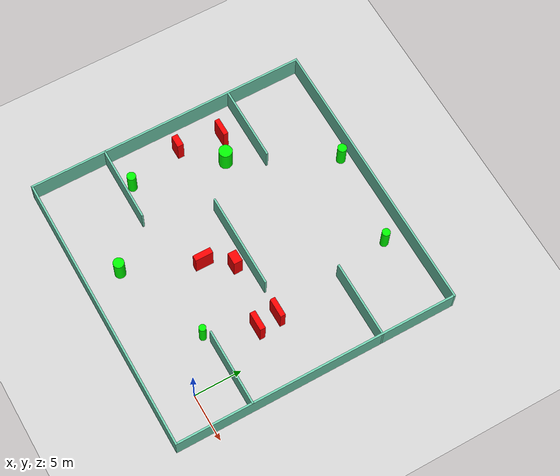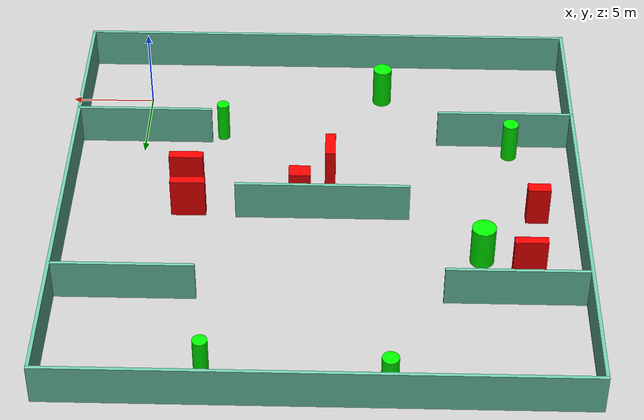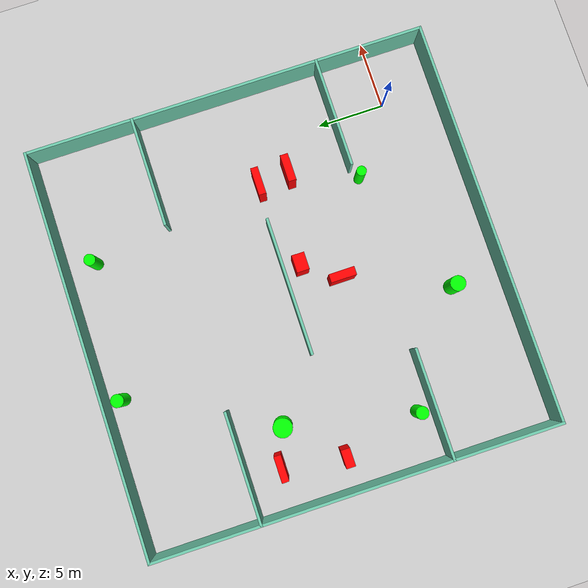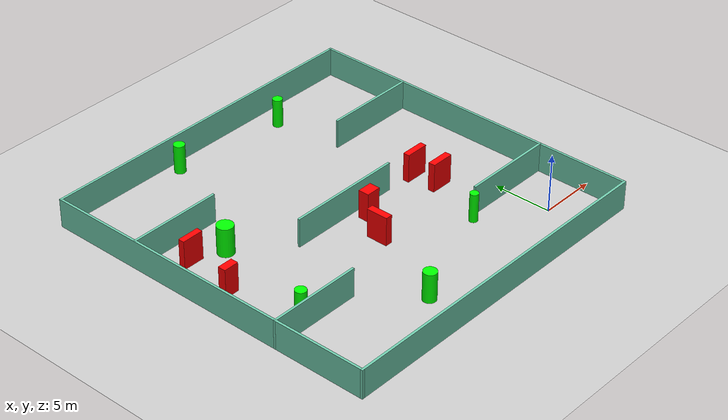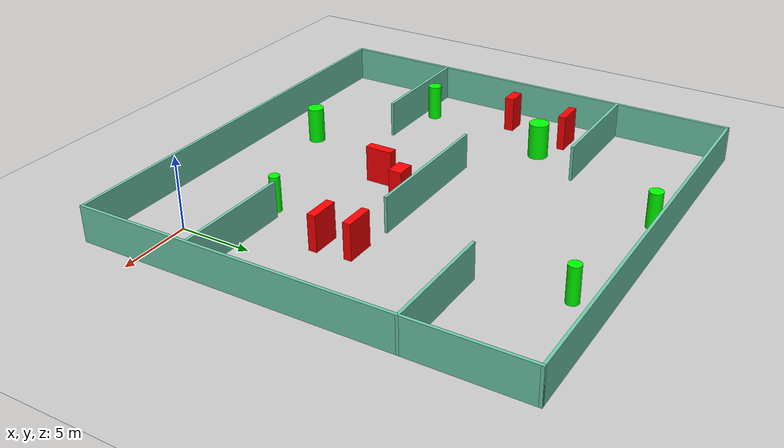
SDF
<sdf version="1.7">
 <world name="default">
  <light name="sun" type="directional">
   <pose>0 0 10 0 -0 0</pose>
   <diffuse>0.8 0.8 0.8 1</diffuse>
   <specular>0.2 0.2 0.2 1</specular>
   <attenuation>
    <range>1000</range>
    <constant>0.9</constant>
    <linear>0.01</linear>
    <quadratic>0.001</quadratic>
   </attenuation>
   <direction>-0.5 0.1 -0.9</direction>
   <spot><inner_angle>0</inner_angle><outer_angle>0</outer_angle><falloff>0</falloff></spot>
  </light>
  <model name="ground_plane">
   <static>1</static>
   <link name="link">
    <collision name="collision">
     <geometry><plane><normal>0 0 1</normal><size>100 100</size></plane></geometry>
     <surface>
      <contact><collide_bitmask>65535</collide_bitmask></contact>
      <friction><ode><mu>100</mu><mu2>50</mu2></ode></friction>
     </surface>
    </collision>
    <visual name="visual">
     <cast_shadows>0</cast_shadows>
     <geometry><plane><normal>0 0 1</normal><size>100 100</size></plane></geometry>
     <material>
      <script><uri>file://media/materials/scripts/gazebo.material</uri><name>Gazebo/Grey</name></script>
     </material>
    </visual>
   </link>
  </model>
  <gravity>0 0 -9.8</gravity>
  <magnetic_field>6e-06 2.3e-05 -4.2e-05</magnetic_field>
  <atmosphere type="adiabatic"/>
  <physics type="ode">
   <max_step_size>0.001</max_step_size>
   <real_time_factor>1</real_time_factor>
   <real_time_update_rate>1000</real_time_update_rate>
  </physics>
  <scene><ambient>0.4 0.4 0.4 1</ambient><background>0.7 0.7 0.7 1</background><shadows>1</shadows></scene>
  <spherical_coordinates>
   <surface_model>EARTH_WGS84</surface_model>
   <latitude_deg>0</latitude_deg>
   <longitude_deg>0</longitude_deg>
   <elevation>0</elevation>
   <heading_deg>0</heading_deg>
  </spherical_coordinates>
  <model name="my_base_walls">
   <link name="Wall_10">
    <collision name="Wall_10_Collision">
     <geometry><box><size>8.2 0.2 2.5</size></box></geometry>
     <pose>0 0 1.25 0 -0 0</pose>
    </collision>
    <visual name="Wall_10_Visual">
     <pose>0 0 1.25 0 -0 0</pose>
     <geometry><box><size>8.2 0.2 2.5</size></box></geometry>
     <material>
      <script><uri>file://media/materials/scripts/gazebo.material</uri><name>Gazebo/Grey</name></script>
      <ambient>0.435294 0.796078 0.67451 1</ambient>
     </material>
     <meta><layer>0</layer></meta>
    </visual>
    <pose>-11 -7 0 0 -0 0</pose>
   </link>
   <link name="Wall_12">
    <collision name="Wall_12_Collision">
     <geometry><box><size>8.2 0.2 2.5</size></box></geometry>
     <pose>0 0 1.25 0 -0 0</pose>
    </collision>
    <visual name="Wall_12_Visual">
     <pose>0 0 1.25 0 -0 0</pose>
     <geometry><box><size>8.2 0.2 2.5</size></box></geometry>
     <material>
      <script><uri>file://media/materials/scripts/gazebo.material</uri><name>Gazebo/Grey</name></script>
      <ambient>0.435294 0.796078 0.67451 1</ambient>
     </material>
     <meta><layer>0</layer></meta>
    </visual>
    <pose>-11 7 0 0 -0 0</pose>
   </link>
   <link name="Wall_14">
    <collision name="Wall_14_Collision">
     <geometry><box><size>8.2 0.2 2.5</size></box></geometry>
     <pose>0 0 1.25 0 -0 0</pose>
    </collision>
    <visual name="Wall_14_Visual">
     <pose>0 0 1.25 0 -0 0</pose>
     <geometry><box><size>8.2 0.2 2.5</size></box></geometry>
     <material>
      <script><uri>file://media/materials/scripts/gazebo.material</uri><name>Gazebo/Grey</name></script>
      <ambient>0.435294 0.796078 0.67451 1</ambient>
     </material>
     <meta><layer>0</layer></meta>
    </visual>
    <pose>11 7 0 0 -0 3.14159</pose>
   </link>
   <link name="Wall_16">
    <collision name="Wall_16_Collision">
     <geometry><box><size>10.2 0.2 2.5</size></box></geometry>
     <pose>0 0 1.25 0 -0 0</pose>
    </collision>
    <visual name="Wall_16_Visual">
     <pose>0 0 1.25 0 -0 0</pose>
     <geometry><box><size>10.2 0.2 2.5</size></box></geometry>
     <material>
      <script><uri>file://media/materials/scripts/gazebo.material</uri><name>Gazebo/Grey</name></script>
      <ambient>0.435294 0.796078 0.67451 1</ambient>
     </material>
     <meta><layer>0</layer></meta>
    </visual>
    <pose>0 0 0 0 -0 3.14159</pose>
   </link>
   <link name="Wall_2">
    <collision name="Wall_2_Collision">
     <geometry><box><size>30.2 0.2 2.5</size></box></geometry>
     <pose>0 0 1.25 0 -0 0</pose>
    </collision>
    <visual name="Wall_2_Visual">
     <pose>0 0 1.25 0 -0 0</pose>
     <geometry><box><size>30.2 0.2 2.5</size></box></geometry>
     <material>
      <script><uri>file://media/materials/scripts/gazebo.material</uri><name>Gazebo/Grey</name></script>
      <ambient>0.435294 0.796078 0.67451 1</ambient>
     </material>
     <meta><layer>0</layer></meta>
    </visual>
    <pose>0 -15 0 0 -0 3.14159</pose>
   </link>
   <link name="Wall_3">
    <collision name="Wall_3_Collision">
     <geometry><box><size>30.2 0.2 2.5</size></box></geometry>
     <pose>0 0 1.25 0 -0 0</pose>
    </collision>
    <visual name="Wall_3_Visual">
     <pose>0 0 1.25 0 -0 0</pose>
     <geometry><box><size>30.2 0.2 2.5</size></box></geometry>
     <material>
      <script><uri>file://media/materials/scripts/gazebo.material</uri><name>Gazebo/Grey</name></script>
      <ambient>0.435294 0.796078 0.67451 1</ambient>
     </material>
     <meta><layer>0</layer></meta>
    </visual>
    <pose>-15 0 0 0 -0 1.5708</pose>
   </link>
   <link name="Wall_4">
    <collision name="Wall_4_Collision">
     <geometry><box><size>30.2 0.2 2.5</size></box></geometry>
     <pose>0 0 1.25 0 -0 0</pose>
    </collision>
    <visual name="Wall_4_Visual">
     <pose>0 0 1.25 0 -0 0</pose>
     <geometry><box><size>30.2 0.2 2.5</size></box></geometry>
     <material>
      <script><uri>file://media/materials/scripts/gazebo.material</uri><name>Gazebo/Grey</name></script>
      <ambient>0.435294 0.796078 0.67451 1</ambient>
     </material>
     <meta><layer>0</layer></meta>
    </visual>
    <pose>0 15 0 0 -0 0</pose>
   </link>
   <link name="Wall_6">
    <collision name="Wall_6_Collision">
     <geometry><box><size>30.2 0.2 2.5</size></box></geometry>
     <pose>0 0 1.25 0 -0 0</pose>
    </collision>
    <visual name="Wall_6_Visual">
     <pose>0 0 1.25 0 -0 0</pose>
     <geometry><box><size>30.2 0.2 2.5</size></box></geometry>
     <material>
      <script><uri>file://media/materials/scripts/gazebo.material</uri><name>Gazebo/Grey</name></script>
      <ambient>0.435294 0.796078 0.67451 1</ambient>
     </material>
     <meta><layer>0</layer></meta>
    </visual>
    <pose>15 0 0 0 -0 1.5708</pose>
   </link>
   <link name="Wall_8">
    <collision name="Wall_8_Collision">
     <geometry><box><size>8.2 0.2 2.5</size></box></geometry>
     <pose>0 0 1.25 0 -0 0</pose>
    </collision>
    <visual name="Wall_8_Visual">
     <pose>0 0 1.25 0 -0 0</pose>
     <geometry><box><size>8.2 0.2 2.5</size></box></geometry>
     <material>
      <script><uri>file://media/materials/scripts/gazebo.material</uri><name>Gazebo/Grey</name></script>
      <ambient>0.435294 0.796078 0.67451 1</ambient>
     </material>
     <meta><layer>0</layer></meta>
    </visual>
    <pose>11 -7 0 0 -0 3.14159</pose>
   </link>
   <static>1</static>
   <pose>-11 11 0 0 -0 0</pose>
  </model>
  <model name="cylinder1">
   <static>1</static>
   <link name="link">
    <inertial>
     <mass>1</mass>
     <inertia><ixx>0.5</ixx><ixy>0</ixy><ixz>0</ixz><iyy>0.5</iyy><iyz>0</iyz><izz>1</izz></inertia>
    </inertial>
    <collision name="collision">
     <geometry><cylinder><radius>0.4730388843065406</radius><length>2.5</length></cylinder></geometry>
    </collision>
    <visual name="visual">
     <geometry><cylinder><radius>0.4730388843065406</radius><length>2.5</length></cylinder></geometry>
     <material>
      <ambient>0 1 0 1</ambient>
      <diffuse>0 1 0 1</diffuse>
      <specular>0.1 0.1 0.1 1</specular>
      <emissive>0 0 0 0</emissive>
     </material>
    </visual>
   </link>
   <pose>-14.848780787506264 24.856718608172386 1.25 0 0 0</pose>
  </model>
  <model name="cylinder2">
   <static>1</static>
   <link name="link">
    <inertial>
     <mass>1</mass>
     <inertia><ixx>0.5</ixx><ixy>0</ixy><ixz>0</ixz><iyy>0.5</iyy><iyz>0</iyz><izz>1</izz></inertia>
    </inertial>
    <collision name="collision">
     <geometry><cylinder><radius>0.6986999103954111</radius><length>2.5</length></cylinder></geometry>
    </collision>
    <visual name="visual">
     <geometry><cylinder><radius>0.6986999103954111</radius><length>2.5</length></cylinder></geometry>
     <material>
      <ambient>0 1 0 1</ambient>
      <diffuse>0 1 0 1</diffuse>
      <specular>0.1 0.1 0.1 1</specular>
      <emissive>0 0 0 0</emissive>
     </material>
    </visual>
   </link>
   <pose>-20.21172338516822 14.538056535819731 1.25 0 0 0</pose>
  </model>
  <model name="cylinder3">
   <static>1</static>
   <link name="link">
    <inertial>
     <mass>1</mass>
     <inertia><ixx>0.5</ixx><ixy>0</ixy><ixz>0</ixz><iyy>0.5</iyy><iyz>0</iyz><izz>1</izz></inertia>
    </inertial>
    <collision name="collision">
     <geometry><cylinder><radius>0.36531200650011736</radius><length>2.5</length></cylinder></geometry>
    </collision>
    <visual name="visual">
     <geometry><cylinder><radius>0.36531200650011736</radius><length>2.5</length></cylinder></geometry>
     <material>
      <ambient>0 1 0 1</ambient>
      <diffuse>0 1 0 1</diffuse>
      <specular>0.1 0.1 0.1 1</specular>
      <emissive>0 0 0 0</emissive>
     </material>
    </visual>
   </link>
   <pose>-4.76731736546583 3.5027524861196584 1.25 0 0 0</pose>
  </model>
  <model name="cylinder4">
   <static>1</static>
   <link name="link">
    <inertial>
     <mass>1</mass>
     <inertia><ixx>0.5</ixx><ixy>0</ixy><ixz>0</ixz><iyy>0.5</iyy><iyz>0</iyz><izz>1</izz></inertia>
    </inertial>
    <collision name="collision">
     <geometry><cylinder><radius>0.42165831249929275</radius><length>2.5</length></cylinder></geometry>
    </collision>
    <visual name="visual">
     <geometry><cylinder><radius>0.42165831249929275</radius><length>2.5</length></cylinder></geometry>
     <material>
      <ambient>0 1 0 1</ambient>
      <diffuse>0 1 0 1</diffuse>
      <specular>0.1 0.1 0.1 1</specular>
      <emissive>0 0 0 0</emissive>
     </material>
    </visual>
   </link>
   <pose>-4.797651656088803 23.81542658502551 1.25 0 0 0</pose>
  </model>
  <model name="cylinder5">
   <static>1</static>
   <link name="link">
    <inertial>
     <mass>1</mass>
     <inertia><ixx>0.5</ixx><ixy>0</ixy><ixz>0</ixz><iyy>0.5</iyy><iyz>0</iyz><izz>1</izz></inertia>
    </inertial>
    <collision name="collision">
     <geometry><cylinder><radius>0.46795655859406937</radius><length>2.5</length></cylinder></geometry>
    </collision>
    <visual name="visual">
     <geometry><cylinder><radius>0.46795655859406937</radius><length>2.5</length></cylinder></geometry>
     <material>
      <ambient>0 1 0 1</ambient>
      <diffuse>0 1 0 1</diffuse>
      <specular>0.1 0.1 0.1 1</specular>
      <emissive>0 0 0 0</emissive>
     </material>
    </visual>
   </link>
   <pose>-22.277892063223934 5.044221792126351 1.25 0 0 0</pose>
  </model>
  <model name="cylinder6">
   <static>1</static>
   <link name="link">
    <inertial>
     <mass>1</mass>
     <inertia><ixx>0.5</ixx><ixy>0</ixy><ixz>0</ixz><iyy>0.5</iyy><iyz>0</iyz><izz>1</izz></inertia>
    </inertial>
    <collision name="collision">
     <geometry><cylinder><radius>0.5630894217285128</radius><length>2.5</length></cylinder></geometry>
    </collision>
    <visual name="visual">
     <geometry><cylinder><radius>0.5630894217285128</radius><length>2.5</length></cylinder></geometry>
     <material>
      <ambient>0 1 0 1</ambient>
      <diffuse>0 1 0 1</diffuse>
      <specular>0.1 0.1 0.1 1</specular>
      <emissive>0 0 0 0</emissive>
     </material>
    </visual>
   </link>
   <pose>-14.55335424338139 -0.3336507880449928 1.25 0 0 0</pose>
  </model>
  <model name="box1">
   <static>1</static>
   <link name="link">
    <inertial>
     <mass>1</mass>
     <inertia><ixx>0.083</ixx><ixy>0</ixy><ixz>0</ixz><iyy>0.083</iyy><iyz>0</iyz><izz>0.083</izz></inertia>
    </inertial>
    <collision name="collision">
     <geometry><box><size>1.2867198184609068 0.9283056947854001 2.5</size></box></geometry>
    </collision>
    <visual name="visual">
     <geometry><box><size>1.2867198184609068 0.9283056947854001 2.5</size></box></geometry>
     <material>
      <ambient>1 0 0 1</ambient>
      <diffuse>1 0 0 1</diffuse>
      <specular>0.1 0.1 0.1 1</specular>
      <emissive>0 0 0 0</emissive>
     </material>
    </visual>
    <sensor name="my_contact" type="contact">
     <contact><collision>box_collision</collision><topic>__default_topic__</topic></contact>
    </sensor>
   </link>
   <pose>-9.646368707307879 9.734015001271846 1.25 0 0 0</pose>
  </model>
  <model name="box2">
   <static>1</static>
   <link name="link">
    <inertial>
     <mass>1</mass>
     <inertia><ixx>0.083</ixx><ixy>0</ixy><ixz>0</ixz><iyy>0.083</iyy><iyz>0</iyz><izz>0.083</izz></inertia>
    </inertial>
    <collision name="collision">
     <geometry><box><size>1.3218083176853628 0.6719145081308331 2.5</size></box></geometry>
    </collision>
    <visual name="visual">
     <geometry><box><size>1.3218083176853628 0.6719145081308331 2.5</size></box></geometry>
     <material>
      <ambient>1 0 0 1</ambient>
      <diffuse>1 0 0 1</diffuse>
      <specular>0.1 0.1 0.1 1</specular>
      <emissive>0 0 0 0</emissive>
     </material>
    </visual>
    <sensor name="my_contact" type="contact">
     <contact><collision>box_collision</collision><topic>__default_topic__</topic></contact>
    </sensor>
   </link>
   <pose>-23.58051004537678 10.90939754624904 1.25 0 0 0</pose>
  </model>
  <model name="box3">
   <static>1</static>
   <link name="link">
    <inertial>
     <mass>1</mass>
     <inertia><ixx>0.083</ixx><ixy>0</ixy><ixz>0</ixz><iyy>0.083</iyy><iyz>0</iyz><izz>0.083</izz></inertia>
    </inertial>
    <collision name="collision">
     <geometry><box><size>2.0383868059761907 0.5425162103063206 2.5</size></box></geometry>
    </collision>
    <visual name="visual">
     <geometry><box><size>2.0383868059761907 0.5425162103063206 2.5</size></box></geometry>
     <material>
      <ambient>1 0 0 1</ambient>
      <diffuse>1 0 0 1</diffuse>
      <specular>0.1 0.1 0.1 1</specular>
      <emissive>0 0 0 0</emissive>
     </material>
    </visual>
    <sensor name="my_contact" type="contact">
     <contact><collision>box_collision</collision><topic>__default_topic__</topic></contact>
    </sensor>
   </link>
   <pose>-3.130537210368402 10.735398418849787 1.25 0 0 0</pose>
  </model>
  <model name="box4">
   <static>1</static>
   <link name="link">
    <inertial>
     <mass>1</mass>
     <inertia><ixx>0.083</ixx><ixy>0</ixy><ixz>0</ixz><iyy>0.083</iyy><iyz>0</iyz><izz>0.083</izz></inertia>
    </inertial>
    <collision name="collision">
     <geometry><box><size>1.8941374517269751 0.5271197094085253 2.5</size></box></geometry>
    </collision>
    <visual name="visual">
     <geometry><box><size>1.8941374517269751 0.5271197094085253 2.5</size></box></geometry>
     <material>
      <ambient>1 0 0 1</ambient>
      <diffuse>1 0 0 1</diffuse>
      <specular>0.1 0.1 0.1 1</specular>
      <emissive>0 0 0 0</emissive>
     </material>
    </visual>
    <sensor name="my_contact" type="contact">
     <contact><collision>box_collision</collision><topic>__default_topic__</topic></contact>
    </sensor>
   </link>
   <pose>-22.822623283500935 15.502440202195285 1.25 0 0 0</pose>
  </model>
  <model name="box5">
   <static>1</static>
   <link name="link">
    <inertial>
     <mass>1</mass>
     <inertia><ixx>0.083</ixx><ixy>0</ixy><ixz>0</ixz><iyy>0.083</iyy><iyz>0</iyz><izz>0.083</izz></inertia>
    </inertial>
    <collision name="collision">
     <geometry><box><size>2.0128556489853366 0.5846210540893589 2.5</size></box></geometry>
    </collision>
    <visual name="visual">
     <geometry><box><size>2.0128556489853366 0.5846210540893589 2.5</size></box></geometry>
     <material>
      <ambient>1 0 0 1</ambient>
      <diffuse>1 0 0 1</diffuse>
      <specular>0.1 0.1 0.1 1</specular>
      <emissive>0 0 0 0</emissive>
     </material>
    </visual>
    <sensor name="my_contact" type="contact">
     <contact><collision>box_collision</collision><topic>__default_topic__</topic></contact>
    </sensor>
   </link>
   <pose>-2.8775269484486614 8.40793383067589 1.25 0 0 0</pose>
  </model>
  <model name="box6">
   <static>1</static>
   <link name="link">
    <inertial>
     <mass>1</mass>
     <inertia><ixx>0.083</ixx><ixy>0</ixy><ixz>0</ixz><iyy>0.083</iyy><iyz>0</iyz><izz>0.083</izz></inertia>
    </inertial>
    <collision name="collision">
     <geometry><box><size>0.6171343191400955 1.8981759109647673 2.5</size></box></geometry>
    </collision>
    <visual name="visual">
     <geometry><box><size>0.6171343191400955 1.8981759109647673 2.5</size></box></geometry>
     <material>
      <ambient>1 0 0 1</ambient>
      <diffuse>1 0 0 1</diffuse>
      <specular>0.1 0.1 0.1 1</specular>
      <emissive>0 0 0 0</emissive>
     </material>
    </visual>
    <sensor name="my_contact" type="contact">
     <contact><collision>box_collision</collision><topic>__default_topic__</topic></contact>
    </sensor>
   </link>
   <pose>-11.409624442382304 7.172608723298675 1.25 0 0 0</pose>
  </model>
 </world>
</sdf>
